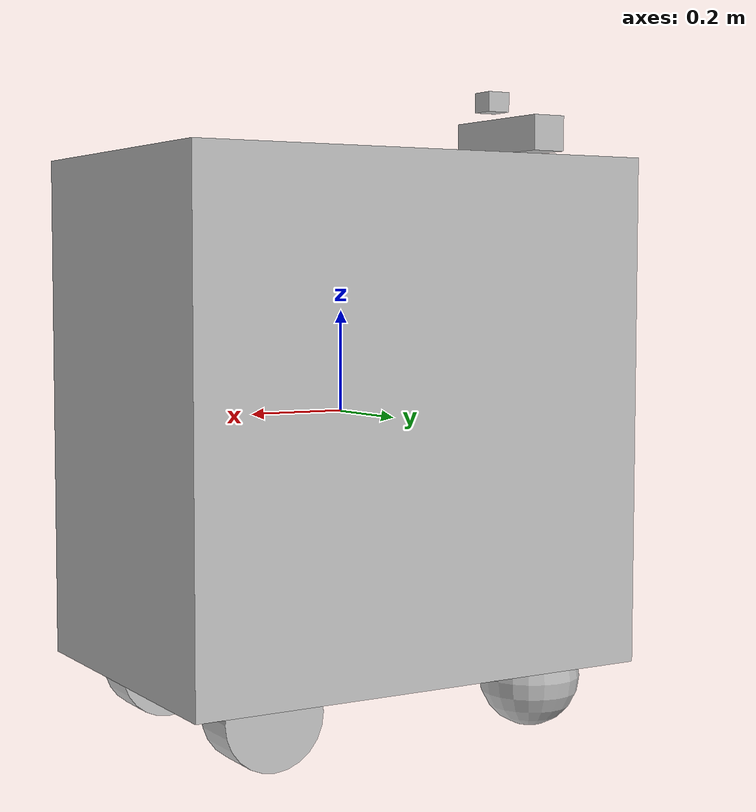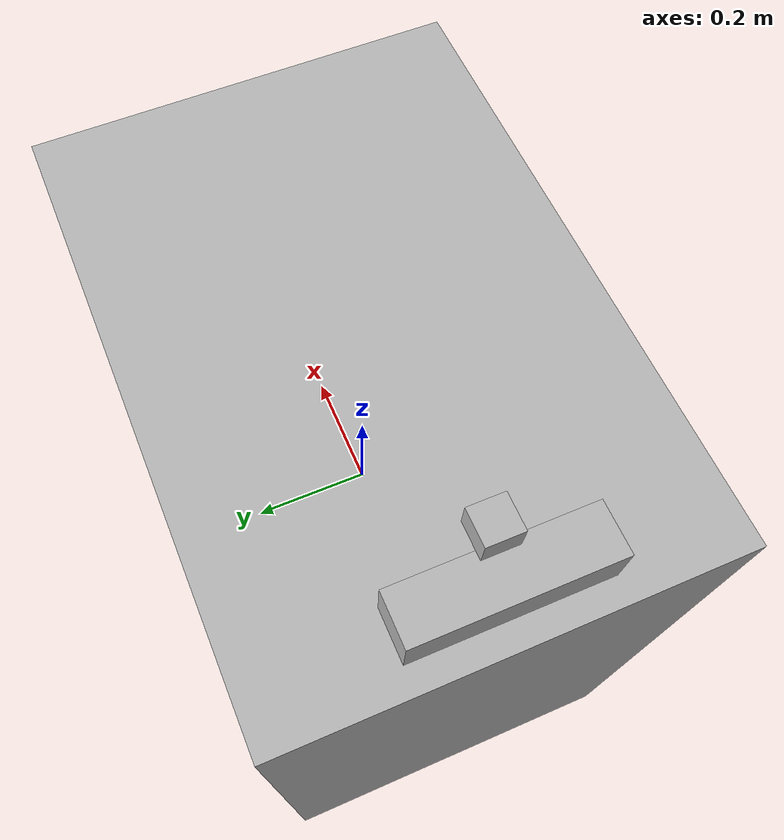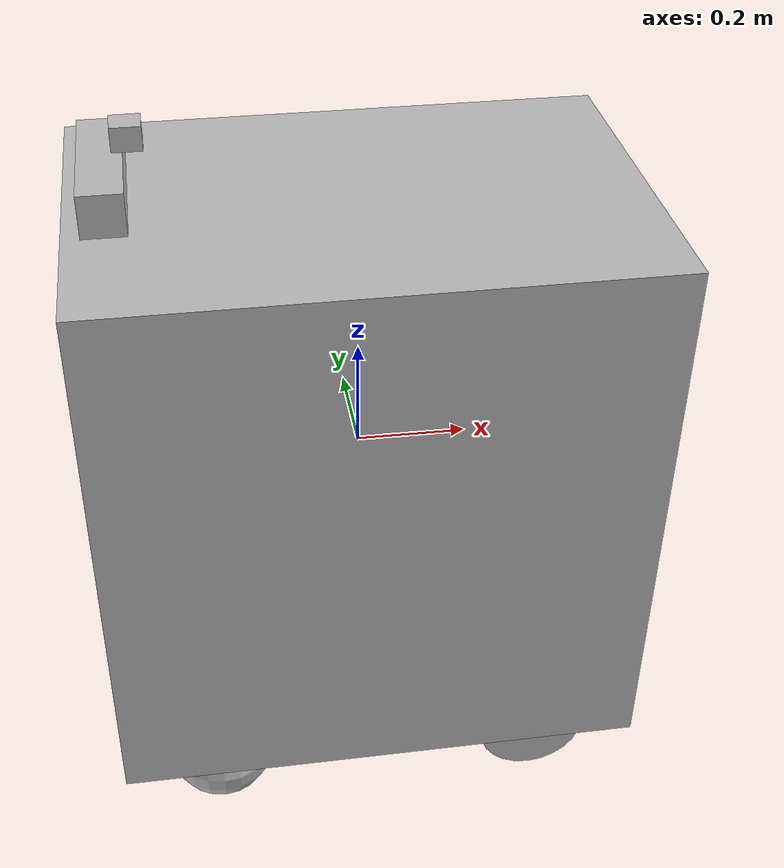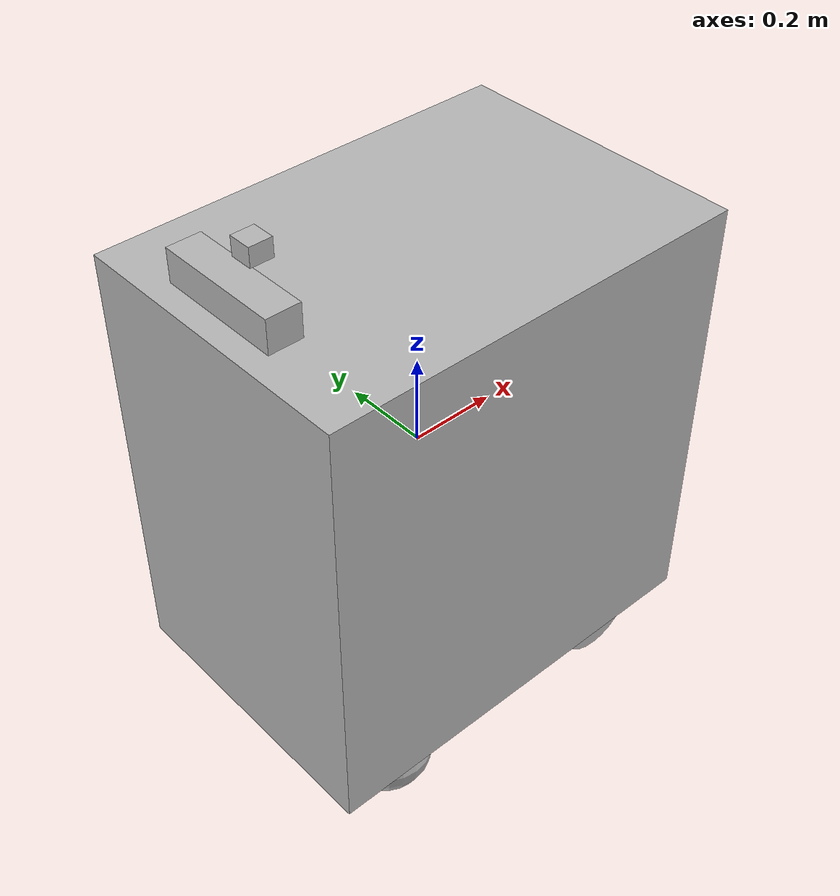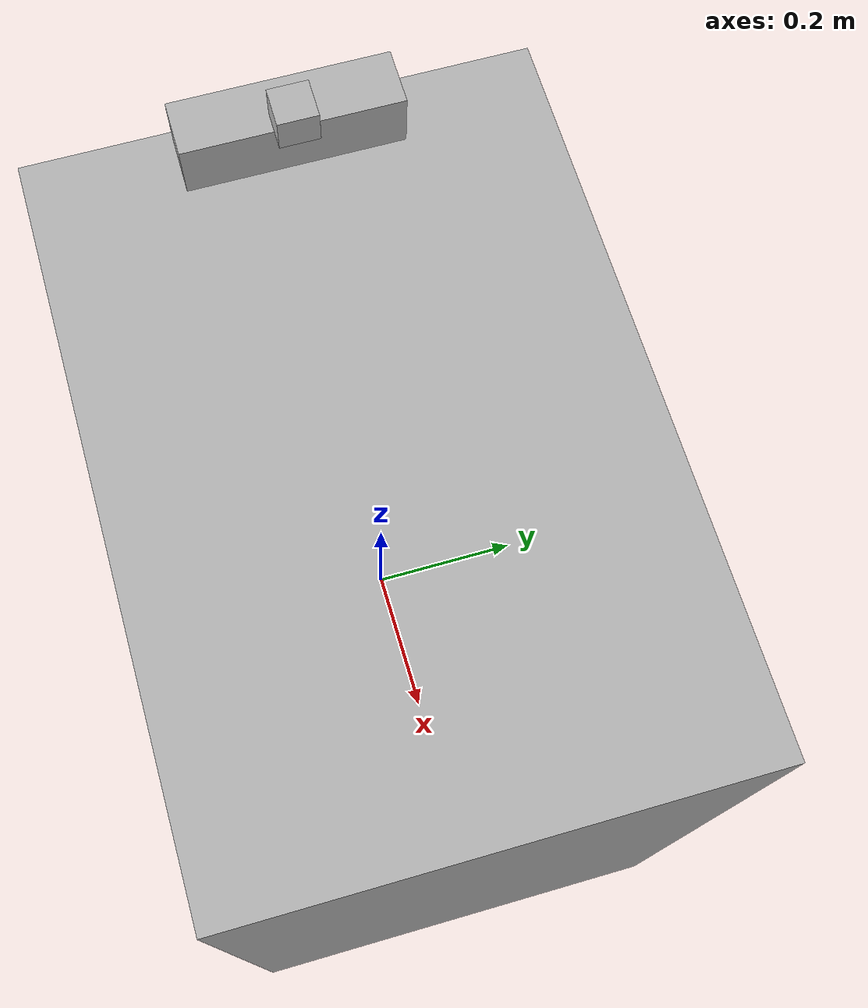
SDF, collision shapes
<?xml version="1.0"?>
<sdf version='1.5'>

    <model name="test_robot">

    <static>false</static>

    <link name='chassis'>

        <pose>0 0 0 0 0 0</pose>

        <inertial>
            <mass>50</mass>
        </inertial>

        <collision name='chassis_collision'>
            <geometry>
                <box>
                   <size>0.962 0.664 1</size>
                </box>
            </geometry>
        </collision>

        <visual name='chassis_visual'>
            <geometry>
                <box>
                    <size>0.962 0.664 1</size>
                </box>
            </geometry>
        </visual>

        <collision name='left_caster_collision'>
            <pose>-0.3 -0.232 -0.525 0 0 0</pose>
            <geometry>
                <sphere>
                    <radius>0.1</radius>
                </sphere>
            </geometry>
            <surface>
                <friction>
                    <ode>
                        <mu>0</mu>
                        <mu2>0</mu2>
                        <slip1>1</slip1>
                        <slip2>1</slip2>
                    </ode>
                </friction>
            </surface>
        </collision>
        <visual name='left_caster_visual'>
            <pose>-0.3 -0.232 -0.525 0 0 0</pose>
                <geometry>
                    <sphere>
                        <radius>0.1</radius>
                    </sphere>
                </geometry>
        </visual>
        <collision name='right_caster_collision'>
            <pose>-0.3 0.232 -0.525 0 0 0</pose>
            <geometry>
                <sphere>
                    <radius>0.1</radius>
                </sphere>
            </geometry>
            <surface>
                <friction>
                    <ode>
                        <mu>0</mu>
                        <mu2>0</mu2>
                        <slip1>1</slip1>
                        <slip2>1</slip2>
                    </ode>
                </friction>
            </surface>
        </collision>
        <visual name='right_caster_visual'>
            <pose>-0.3 0.232 -0.525 0 0 0</pose>
                <geometry>
                    <sphere>
                        <radius>0.1</radius>
                    </sphere>
                </geometry>
        </visual>
    </link>

    <link name='left_wheel'>
        <pose>0.3 -0.232 -0.525 0 1.5707 1.5707</pose>

        <inertial>
            <mass>5</mass>
        </inertial>

        <collision name='left_wheel_collision'>
            <geometry>
                <cylinder>
                    <radius>0.1</radius>
                    <length>0.1</length>
                </cylinder>
            </geometry>
        </collision>
        <visual name='left_wheel_collision'>
            <geometry>
                <cylinder>
                    <radius>0.1</radius>
                    <length>0.1</length>
                </cylinder>
            </geometry>
        </visual>
    </link>

    <link name='right_wheel'>
        <pose>0.3 0.232 -0.525 0 1.5707 1.5707</pose>

        <inertial>
            <mass>5</mass>
        </inertial>

        <collision name='right_wheel_collision'>
            <geometry>
                <cylinder>
                    <radius>0.1</radius>
                    <length>0.1</length>
                </cylinder>
            </geometry>
        </collision>
        <visual name='right_wheel_collision'>
            <geometry>
                <cylinder>
                    <radius>0.1</radius>
                    <length>0.1</length>
                </cylinder>
            </geometry>
        </visual>
    </link>

    <joint type='revolute' name='left_wheel_hinge'>
        <pose>0 0 0 0 0 0</pose>
        <child>left_wheel</child>
        <parent>chassis</parent>
        <axis>
            <xyz>0 0 1</xyz>
        </axis>
    </joint>

    <joint type='revolute' name='right_wheel_hinge'>
        <pose>0 0 0 0 0 0</pose>
        <child>right_wheel</child>
        <parent>chassis</parent>
        <axis>
            <xyz>0 0 1</xyz>
        </axis>
    </joint>

    <model name="kinect_ros">
        <pose>-0.41 0 0.56 0 0 3.14</pose>
	    <static>false</static>
        <link name="kinect_ros_link">
            <inertial>
                <mass>0.1</mass>
            </inertial>
        <collision name="collision">
            <geometry>
                <box>
                    <size>0.073000 0.276000 0.072000</size>
                </box>
            </geometry>
        </collision>
        <visual name="visual">
            <geometry>
                <mesh>
                    <uri>model://test_robot/meshes/kinect.dae</uri>
                </mesh>
            </geometry>
        </visual>
        <sensor name="camera" type="depth">
            <update_rate>20</update_rate>
            <camera>
                <horizontal_fov>1.047198</horizontal_fov>
                <image>
                    <width>640</width>
                    <height>480</height>
                    <format>R8G8B8</format>
                </image>
                <clip>
                    <near>0.05</near>
                    <far>3</far>
                </clip>
            </camera>
  	    <plugin name="camera_plugin" filename="libgazebo_ros_openni_kinect.so">
          <baseline>0.2</baseline>
          <alwaysOn>true</alwaysOn>
          <updateRate>0.0</updateRate>
          <cameraName>camera_ir</cameraName>
          <imageTopicName>/camera/color/image_raw</imageTopicName>
          <cameraInfoTopicName>/camera/color/camera_info</cameraInfoTopicName>
          <depthImageTopicName>/camera/depth/image_raw</depthImageTopicName>
          <depthImageCameraInfoTopicName>/camera/depth/camera_info</depthImageCameraInfoTopicName>
          <pointCloudTopicName>/camera/depth/points</pointCloudTopicName>
          <frameName>camera_link</frameName>
          <pointCloudCutoff>0.5</pointCloudCutoff>
          <pointCloudCutoffMax>3.0</pointCloudCutoffMax>
          <distortionK1>0</distortionK1>
          <distortionK2>0</distortionK2>
          <distortionK3>0</distortionK3>
          <distortionT1>0</distortionT1>
          <distortionT2>0</distortionT2>
          <CxPrime>0</CxPrime>
          <Cx>0</Cx>
          <Cy>0</Cy>
          <focalLength>0</focalLength>
          <hackBaseline>0</hackBaseline>
        </plugin>
        </sensor>
        </link>

    <joint name="kinect_joint" type="fixed">
        <child>kinect_ros_link</child>
        <parent>chassis</parent>
    </joint>

    <model name="hokuyo">
    <pose>-0.045 0 0.07 0 0 0</pose>
    <link name="hokuyo_link">
      <inertial>
        <mass>0.1</mass>
      </inertial>
      <visual name="visual">
        <geometry>
          <mesh>
            <uri>model://test_robot/meshes/hokuyo.dae</uri>
          </mesh>
        </geometry>
      </visual>
      <collision name="collision-base">
        <geometry>
          <box>
            <size>0.05 0.05 0.041</size>
          </box>
        </geometry>
      </collision>
      <collision name="collision-top">
        <geometry>
          <cylinder>
            <radius>0.021</radius>
            <length>0.029</length>
          </cylinder>
        </geometry>
      </collision>
      <sensor name="laser" type="ray">
        <ray>
          <scan>
            <horizontal>
              <samples>640</samples>
              <resolution>1</resolution>
              <min_angle>-2.26889</min_angle>
              <max_angle>2.268899</max_angle>
            </horizontal>
          </scan>
          <range>
            <min>0.08</min>
            <max>10</max>
            <resolution>0.01</resolution>
          </range>
        </ray>
        <plugin name="laser" filename="libRayPlugin.so" />
        <always_on>1</always_on>
        <update_rate>30</update_rate>
        <visualize>true</visualize>
      </sensor>
    </link>

    <joint name="hokuyo_joint" type="fixed">
        <child>hokuyo_link</child>
        <parent>kinect_ros_link</parent>
    </joint>

    </model>
   </model>
 </model>
</sdf>
